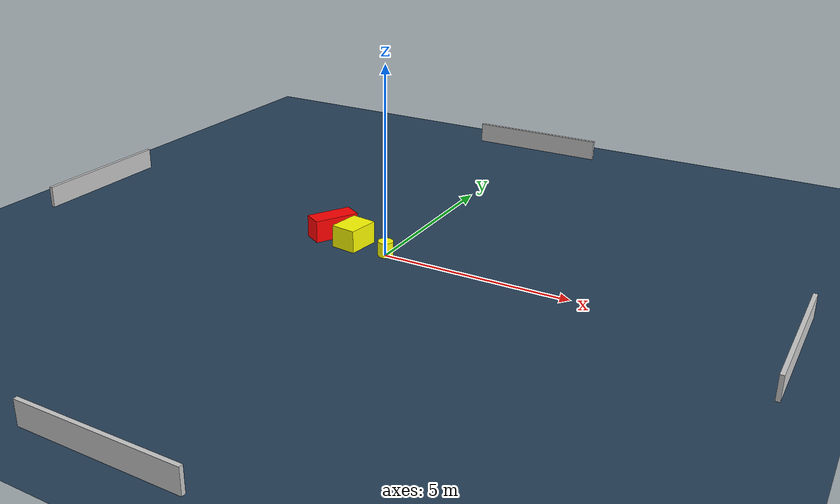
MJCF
<?xml version="1.0" ?>
<mujoco model="generated_environment">
  <option timestep="0.01" integrator="RK4" cone="elliptic"/>
  <default>
    <geom density="1"/>
  </default>
  <asset>
    <texture builtin="gradient" height="3072" name="skybox" rgb1="0.3 0.5 0.7" rgb2="0 0 0" type="skybox" width="512"/>
    <texture builtin="checker" height="300" name="groundplane" rgb1="0.2 0.3 0.4" rgb2="0.1 0.2 0.3" type="2d" width="300"/>
    <material name="groundplane" reflectance="0.2" texrepeat="5 5" texture="groundplane"/>
  </asset>
  <worldbody>
    <light dir="0 0 -1" directional="true" pos="0 0 1.5"/>
    <geom condim="3" friction="0.5 0.005 0.001" material="groundplane" name="floor" pos="0 0 0" size="0 0 0.05" type="plane"/>
    <body name="walls">
      <geom name="wall_1" condim="4" pos="-10.0 0.0 0.3" rgba="0.800000011920929 0.800000011920929 0.800000011920929 1.0" size="0.05 2.0 0.3" type="box"/>
      <geom name="wall_2" condim="4" pos="10.0 0.0 0.3" rgba="0.800000011920929 0.800000011920929 0.800000011920929 1.0" size="0.05 2.0 0.3" type="box"/>
      <geom name="wall_3" condim="4" pos="0.0 -10.0 0.3" rgba="0.800000011920929 0.800000011920929 0.800000011920929 1.0" size="2.0 0.05 0.3" type="box"/>
      <geom name="wall_4" condim="4" pos="0.0 10.0 0.3" rgba="0.800000011920929 0.800000011920929 0.800000011920929 1.0" size="2.0 0.05 0.3" type="box"/>
    </body>
    <body name="robot">
      <joint name="joint_x" type="slide" pos="0 0 0" axis="1 0 0"/>
      <joint name="joint_y" type="slide" pos="0 0 0" axis="0 1 0"/>
      <geom name="robot" type="cylinder" pos="0.0 0.0 0.2" size="0.2 0.2 0.0" mass="5.0" friction="1.0 0.005 0.0001" condim="4" rgba="1.0 1.0 0.0 1.0"/>
    </body>
    <body name="obstacle_1_movable">
      <geom name="obstacle_1_movable" condim="4" pos="-1.0724744592250457 0.15950082840828433 0.3" euler="0 0 352.41560616698644" friction="0.0 0.005 0.001" rgba="1.0 1.0 0.0 1.0" size="0.3474505153195939 0.4417625364774686 0.3" type="box" mass="0.1"/>
      <joint type="free"/>
    </body>
    <body name="obstacle_2_static">
      <geom name="obstacle_2_static" condim="4" pos="-1.8897555377446533 0.41204174812394145 0.3" euler="0 0 60.310264792664135" friction="0.0 0.005 0.001" rgba="1.0 0.0 0.0 1.0" size="0.6127832755256593 0.26467012710155136 0.3" type="box"/>
    </body>
  </worldbody>
  <actuator>
    <motor name="actuator_x" joint="joint_x" gear="1" ctrlrange="-1 1"/>
    <motor name="actuator_y" joint="joint_y" gear="1" ctrlrange="-1 1"/>
  </actuator>
</mujoco>
